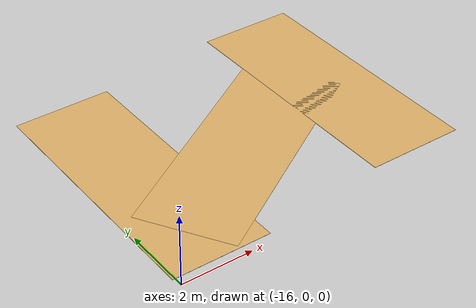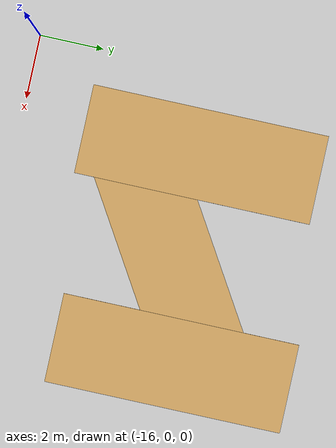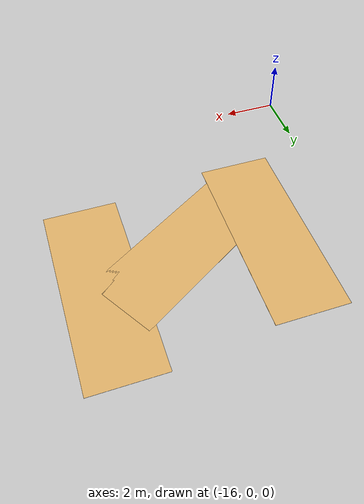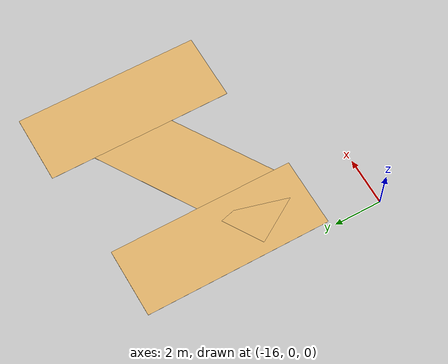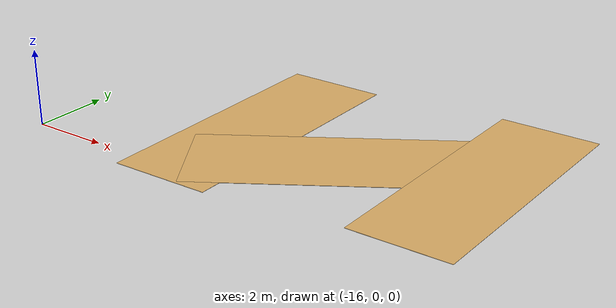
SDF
<sdf version="1.7">
 <world name="default">
  <model name="ground_plane">
   <static>1</static>
   <link name="link">
    <collision name="collision">
     <geometry><plane><normal>0 0 1</normal><size>100 100</size></plane></geometry>
     <surface><friction><ode><mu>100</mu><mu2>50</mu2></ode></friction></surface>
    </collision>
    <visual name="visual">
     <cast_shadows>0</cast_shadows>
     <geometry><plane><normal>0 0 1</normal><size>100 100</size></plane></geometry>
     <material>
      <script><uri>file://media/materials/scripts/gazebo.material</uri><name>Gazebo/Grey</name></script>
     </material>
    </visual>
   </link>
  </model>
  <model name="Beige_Pavement_3">
   <link name="link_0">
    <inertial>
     <mass>1</mass>
     <inertia>
      <ixx>0.166667</ixx>
      <ixy>0</ixy>
      <ixz>0</ixz>
      <iyy>0.166667</iyy>
      <iyz>0</iyz>
      <izz>0.166667</izz>
     </inertia>
     <pose>0 0 -0.5 0 -0 0</pose>
    </inertial>
    <pose>0 0 -0.5 0 -0 0</pose>
    <visual name="visual">
     <pose>0 0 -0.5 0 -0 0</pose>
     <geometry><box><size>3 8 0.01</size></box></geometry>
     <material>
      <lighting>1</lighting>
      <script><uri>file://media/materials/scripts/gazebo.material</uri><name>Gazebo/Grey</name></script>
      <shader type="pixel"><normal_map>__default__</normal_map></shader>
      <ambient>0.914 0.725 0.431 1</ambient>
      <diffuse>0.7 0.7 0.7 1</diffuse>
      <specular>0.01 0.01 0.01 1</specular>
      <emissive>0 0 0 1</emissive>
     </material>
    </visual>
    <collision name="collision">
     <geometry><box><size>1 1 1</size></box></geometry>
     <surface>
      <friction>
       <ode><mu>1</mu><mu2>1</mu2><fdir1>0 0 0</fdir1><slip1>0</slip1><slip2>0</slip2></ode>
       <torsional>
        <coefficient>1</coefficient>
        <patch_radius>0</patch_radius>
        <surface_radius>0</surface_radius>
        <use_patch_radius>1</use_patch_radius>
        <ode><slip>0</slip></ode>
       </torsional>
      </friction>
      <bounce><restitution_coefficient>0</restitution_coefficient><threshold>1e+06</threshold></bounce>
      <contact>
       <collide_without_contact>0</collide_without_contact>
       <collide_without_contact_bitmask>1</collide_without_contact_bitmask>
       <collide_bitmask>1</collide_bitmask>
       <ode>
        <soft_cfm>0</soft_cfm>
        <soft_erp>0.2</soft_erp>
        <kp>1e+13</kp>
        <kd>1</kd>
        <max_vel>0.01</max_vel>
        <min_depth>0</min_depth>
       </ode>
       <bullet>
        <split_impulse>1</split_impulse>
        <split_impulse_penetration_threshold>-0.01</split_impulse_penetration_threshold>
        <soft_cfm>0</soft_cfm>
        <soft_erp>0.2</soft_erp>
        <kp>1e+13</kp>
        <kd>1</kd>
       </bullet>
      </contact>
     </surface>
    </collision>
   </link>
   <static>0</static>
   <pose>-6.70174 6.188 -0.5 0 -0 0</pose>
  </model>
  <model name="Beige_Pavement_6">
   <link name="link_0">
    <inertial>
     <mass>1</mass>
     <inertia>
      <ixx>0.166667</ixx>
      <ixy>0</ixy>
      <ixz>0</ixz>
      <iyy>0.166667</iyy>
      <iyz>0</iyz>
      <izz>0.166667</izz>
     </inertia>
     <pose>0 0 -0.5 0 -0 0</pose>
    </inertial>
    <pose>0 0 -0.5 0 -0 0</pose>
    <visual name="visual">
     <pose>0 0 -0.5 0 -0 0</pose>
     <geometry><box><size>3 8 0.01</size></box></geometry>
     <material>
      <lighting>1</lighting>
      <script><uri>file://media/materials/scripts/gazebo.material</uri><name>Gazebo/Grey</name></script>
      <shader type="pixel"><normal_map>__default__</normal_map></shader>
      <ambient>0.914 0.725 0.431 1</ambient>
      <diffuse>0.7 0.7 0.7 1</diffuse>
      <specular>0.01 0.01 0.01 1</specular>
      <emissive>0 0 0 1</emissive>
     </material>
    </visual>
    <collision name="collision">
     <geometry><box><size>1 1 1</size></box></geometry>
     <surface>
      <friction>
       <ode><mu>1</mu><mu2>1</mu2><fdir1>0 0 0</fdir1><slip1>0</slip1><slip2>0</slip2></ode>
       <torsional>
        <coefficient>1</coefficient>
        <patch_radius>0</patch_radius>
        <surface_radius>0</surface_radius>
        <use_patch_radius>1</use_patch_radius>
        <ode><slip>0</slip></ode>
       </torsional>
      </friction>
      <bounce><restitution_coefficient>0</restitution_coefficient><threshold>1e+06</threshold></bounce>
      <contact>
       <collide_without_contact>0</collide_without_contact>
       <collide_without_contact_bitmask>1</collide_without_contact_bitmask>
       <collide_bitmask>1</collide_bitmask>
       <ode>
        <soft_cfm>0</soft_cfm>
        <soft_erp>0.2</soft_erp>
        <kp>1e+13</kp>
        <kd>1</kd>
        <max_vel>0.01</max_vel>
        <min_depth>0</min_depth>
       </ode>
       <bullet>
        <split_impulse>1</split_impulse>
        <split_impulse_penetration_threshold>-0.01</split_impulse_penetration_threshold>
        <soft_cfm>0</soft_cfm>
        <soft_erp>0.2</soft_erp>
        <kp>1e+13</kp>
        <kd>1</kd>
       </bullet>
      </contact>
     </surface>
    </collision>
   </link>
   <static>0</static>
   <pose>-13.6863 5.66039 -0.5 0 -0 0</pose>
  </model>
  <model name="Beige_Pavement_7">
   <link name="link_0">
    <inertial>
     <mass>1</mass>
     <inertia>
      <ixx>0.166667</ixx>
      <ixy>0</ixy>
      <ixz>0</ixz>
      <iyy>0.166667</iyy>
      <iyz>0</iyz>
      <izz>0.166667</izz>
     </inertia>
     <pose>0 0 -0.5 0 -0 0</pose>
    </inertial>
    <pose>0 0 -0.5 0 -0 0</pose>
    <visual name="visual">
     <pose>0 0 -0.5 0 -0 0</pose>
     <geometry><box><size>3 8 0.01</size></box></geometry>
     <material>
      <lighting>1</lighting>
      <script><uri>file://media/materials/scripts/gazebo.material</uri><name>Gazebo/Grey</name></script>
      <shader type="pixel"><normal_map>__default__</normal_map></shader>
      <ambient>0.914 0.725 0.431 1</ambient>
      <diffuse>0.7 0.7 0.7 1</diffuse>
      <specular>0.01 0.01 0.01 1</specular>
      <emissive>0 0 0 1</emissive>
     </material>
    </visual>
    <collision name="collision">
     <geometry><box><size>1 1 1</size></box></geometry>
     <surface>
      <friction>
       <ode><mu>1</mu><mu2>1</mu2><fdir1>0 0 0</fdir1><slip1>0</slip1><slip2>0</slip2></ode>
       <torsional>
        <coefficient>1</coefficient>
        <patch_radius>0</patch_radius>
        <surface_radius>0</surface_radius>
        <use_patch_radius>1</use_patch_radius>
        <ode><slip>0</slip></ode>
       </torsional>
      </friction>
      <bounce><restitution_coefficient>0</restitution_coefficient><threshold>1e+06</threshold></bounce>
      <contact>
       <collide_without_contact>0</collide_without_contact>
       <collide_without_contact_bitmask>1</collide_without_contact_bitmask>
       <collide_bitmask>1</collide_bitmask>
       <ode>
        <soft_cfm>0</soft_cfm>
        <soft_erp>0.2</soft_erp>
        <kp>1e+13</kp>
        <kd>1</kd>
        <max_vel>0.01</max_vel>
        <min_depth>0</min_depth>
       </ode>
       <bullet>
        <split_impulse>1</split_impulse>
        <split_impulse_penetration_threshold>-0.01</split_impulse_penetration_threshold>
        <soft_cfm>0</soft_cfm>
        <soft_erp>0.2</soft_erp>
        <kp>1e+13</kp>
        <kd>1</kd>
       </bullet>
      </contact>
     </surface>
    </collision>
   </link>
   <static>0</static>
   <pose>-10.5274 5.10907 -0.5 0 0 -1.02029</pose>
  </model>
 </world>
</sdf>
